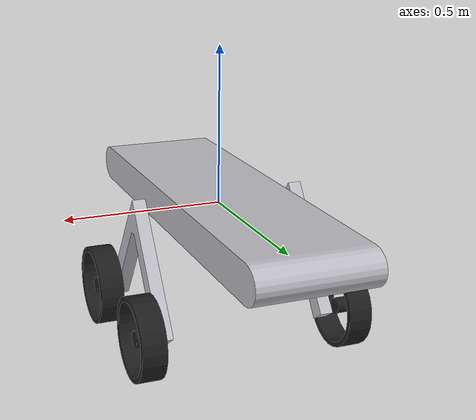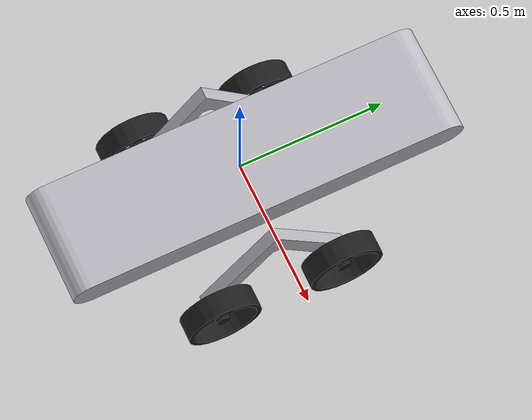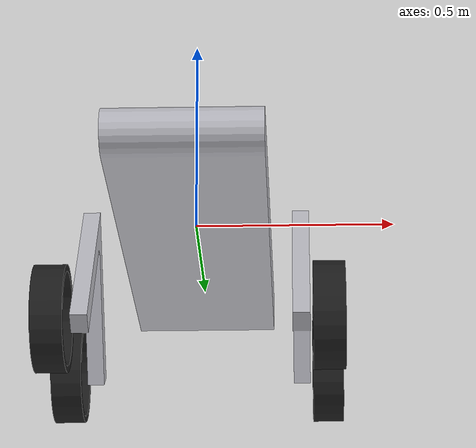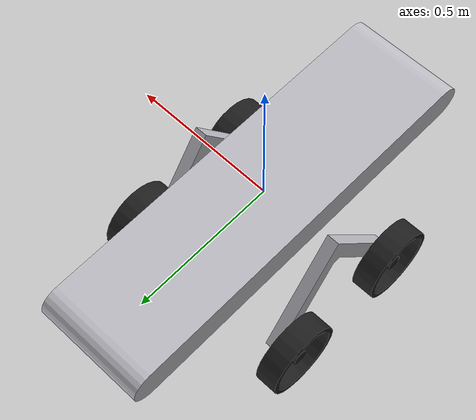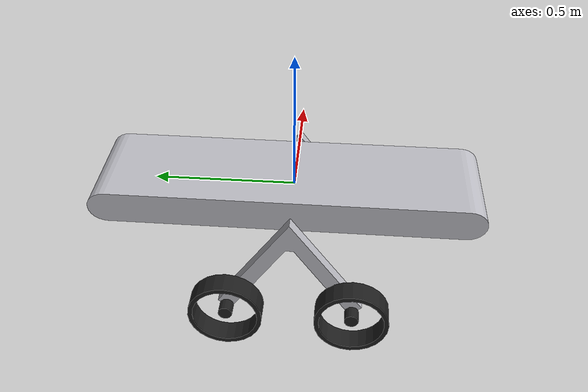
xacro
<?xml version="1.0" ?>
<robot name="digbot" xmlns:xacro="http://www.ros.org/wiki/xacro">

<xacro:include filename="$(find lunabotics2025_urdf)/urdf/materials.xacro" />
<!--xacro:include filename="$(find lunabotics2025_urdf)/urdf/lunabotics_urdf.trans" /-->
<xacro:include filename="$(find lunabotics2025_urdf)/urdf/lunabotics_urdf.gazebo" />

<link name="base_link">
  <inertial>
    <origin xyz="-0.25586676353018807 0.000039307641348851954 0.2586743162275578" rpy="0 0 0"/>
    <mass value="145.15"/>
    <inertia ixx="4.84425197236" iyy="4.557425293" izz="5.02371818712" iyz="0.0" ixy="0.0" ixz="-0.02161067673"/>
  </inertial>
  <visual>
    <origin xyz="0 0 0" rpy="0 0 0"/>
    <geometry>
      <mesh filename="file://$(find lunabotics2025_urdf)/meshes/Diff.stl" scale="0.001 0.001 0.001"/>
    </geometry>
    <material name="dk_green"/>
  </visual>
  <collision>
    <origin xyz="0 0 0" rpy="0 0 0"/>
    <geometry>
      <mesh filename="file://$(find lunabotics2025_urdf)/meshes/Diff.stl" scale="0.001 0.001 0.001"/>
    </geometry>
  </collision>
</link>

<link name="wheel_fl">
  <inertial>
    <origin xyz="-3.730349362740526e-15 0.09077849192803256 -3.83026943495679e-15" rpy="0 0 0"/>
    <mass value="6.80389"/>
    <inertia ixx="0.11749384354" iyy="0.20716716933" izz="0.11749384354" ixy="-0.0" iyz="0.0" ixz="-0.0"/>
  </inertial>
  <visual>
    <origin xyz="0 0 0" rpy="0 0 0"/>
    <geometry>
      <mesh filename="file://$(find lunabotics2025_urdf)/meshes/DigWheel.stl" scale="0.001 0.001 0.001"/>
    </geometry>
    <material name="black"/>
  </visual>
  <collision>
    <origin xyz="0 0 0" rpy="0 0 0"/>
    <geometry>
      <mesh filename="file://$(find lunabotics2025_urdf)/meshes/DigWheel.stl" scale="0.001 0.001 0.001"/>
    </geometry>
  </collision>
</link>

<link name="wheel_fr">
  <inertial>
    <origin xyz="3.9968028886505635e-15 -0.09077849192803216 3.730349362740526e-15" rpy="0 0 0"/>
    <mass value="6.80389"/>
    <inertia ixx="0.11749384354" iyy="0.20716716933" izz="0.11749384354" ixy="-0.0" iyz="0.0" ixz="-0.0"/>
  </inertial>
  <visual>
    <origin xyz="0 0 0" rpy="0 0 0"/>
    <geometry>
      <mesh filename="file://$(find lunabotics2025_urdf)/meshes/DigWheel.stl" scale="0.001 0.001 0.001"/>
    </geometry>
    <material name="black"/>
  </visual>
  <collision>
    <origin xyz="0 0 0" rpy="0 0 0"/>
    <geometry>
      <mesh filename="file://$(find lunabotics2025_urdf)/meshes/DigWheel.stl" scale="0.001 0.001 0.001"/>
    </geometry>
  </collision>
</link>

<link name="wheel_bl">
  <inertial>
    <origin xyz="-3.730349362740526e-15 0.09077849192803207 3.808064974464287e-15" rpy="0 0 0"/>
    <mass value="6.80389"/>
    <inertia ixx="0.11749384354" iyy="0.20716716933" izz="0.11749384354" ixy="-0.0" iyz="0.0" ixz="-0.0"/>
  </inertial>
  <visual>
    <origin xyz="0 0 0" rpy="0 0 0"/>
    <geometry>
      <mesh filename="file://$(find lunabotics2025_urdf)/meshes/DigWheel.stl" scale="0.001 0.001 0.001"/>
    </geometry>
    <material name="black"/>
  </visual>
  <collision>
    <origin xyz="0 0 0" rpy="0 0 0"/>
    <geometry>
      <mesh filename="file://$(find lunabotics2025_urdf)/meshes/DigWheel.stl" scale="0.001 0.001 0.001"/>
    </geometry>
  </collision>
</link>

<link name="wheel_br">
  <inertial>
    <origin xyz="3.9968028886505635e-15 -0.0907784919280322 -3.785860513971784e-15 " rpy="0 0 0"/>
    <mass value="6.80389"/>
    <inertia ixx="0.11749384354" iyy="0.20716716933" izz="0.11749384354" ixy="-0.0" iyz="0.0" ixz="-0.0"/>
  </inertial>
  <visual>
    <origin xyz="0 0 0" rpy="0 0 0"/>
    <geometry>
      <mesh filename="file://$(find lunabotics2025_urdf)/meshes/DigWheel.stl" scale="0.001 0.001 0.001"/>
    </geometry>
    <material name="black"/>
  </visual>
  <collision>
    <origin xyz="0 0 0" rpy="0 0 0"/>
    <geometry>
      <mesh filename="file://$(find lunabotics2025_urdf)/meshes/DigWheel.stl" scale="0.001 0.001 0.001"/>
    </geometry>
  </collision>
</link>

<link name="rocker_r">
  <inertial>
    <origin xyz="-0.4002194744336831 -2.8073985617496778e-16 0.04900225925646633" rpy="0 0 0"/>
    <mass value="145.15"/>
    <inertia ixx="4.8232327848" iyy="4.53348956976" izz="5.0206133078" ixy="-0.0" iyz="-0.0" ixz="0.03733889251"/>
  </inertial>
  <visual>
    <origin xyz="0 0 0" rpy="0 0 0"/>
    <geometry>
      <mesh filename="file://$(find lunabotics2025_urdf)/meshes/Rocker_R.stl" scale="0.001 0.001 0.001"/>
    </geometry>
    <material name="silver"/>
  </visual>
  <collision>
    <origin xyz="0 0 0" rpy="0 0 0"/>
    <geometry>
      <mesh filename="file://$(find lunabotics2025_urdf)/meshes/Rocker_R.stl" scale="0.001 0.001 0.001"/>
    </geometry>
  </collision>
</link>

<link name="rocker_l">
  <inertial>
    <origin xyz="-0.4002194744336831 -2.8073985617496778e-16 0.04900225925646633" rpy="0 0 0"/>
    <mass value="145.15"/>
    <inertia ixx="4.8232327848" iyy="4.53348956976" izz="5.0206133078" ixy="-0.0" iyz="-0.0" ixz="0.03733889251"/>
  </inertial>
  <visual>
    <origin xyz="0 0 0" rpy="0 0 0"/>
    <geometry>
      <mesh filename="file://$(find lunabotics2025_urdf)/meshes/Rocker_L.stl" scale="0.001 0.001 0.001"/>
    </geometry>
    <material name="silver"/>
  </visual>
  <collision>
    <origin xyz="0 0 0" rpy="0 0 0"/>
    <geometry>
      <mesh filename="file://$(find lunabotics2025_urdf)/meshes/Rocker_L.stl" scale="0.001 0.001 0.001"/>
    </geometry>
  </collision>
</link>

<link name="belt_frame">
  <inertial>
    <origin xyz="-0.4002194744336831 -2.8073985617496778e-16 0.04900225925646633" rpy="0 0 0"/>
    <mass value="145.15"/>
    <inertia ixx="4.8232327848" iyy="4.53348956976" izz="5.0206133078" ixy="-0.0" iyz="-0.0" ixz="0.03733889251"/>
  </inertial>
  <visual>
    <origin xyz="0 0 0" rpy="0 0 0"/>
    <geometry>
      <mesh filename="file://$(find lunabotics2025_urdf)/meshes/Belt_Frame.stl" scale="0.001 0.001 0.001"/>
    </geometry>
    <material name="silver"/>
  </visual>
  <collision>
    <origin xyz="0 0 0" rpy="0 0 0"/>
    <geometry>
      <mesh filename="file://$(find lunabotics2025_urdf)/meshes/Belt_Frame.stl" scale="0.001 0.001 0.001"/>
    </geometry>
  </collision>
</link>

<joint name="wheel_fl_to_rocker_l" type="continuous">
  <origin xyz="0.292291 -0.226416 -0.316205" rpy="0 0 0"/>
  <parent link="rocker_l"/>
  <child link="wheel_fl"/>
  <axis xyz="1.0 0.0 0.0"/>
</joint>

<joint name="wheel_bl_to_rocker_l" type="continuous">
  <origin xyz="0.292291 0.211503 -0.319574" rpy="0 0 0"/>
  <parent link="rocker_l"/>
  <child link="wheel_bl"/>
  <axis xyz="1.0 0.0 0.0"/>
</joint>

<joint name="wheel_fr_to_rocker_r" type="continuous">
  <origin xyz="-0.293673 0.214632 -0.316895" rpy="0 0 3.1415926535"/>
  <parent link="rocker_r"/>
  <child link="wheel_fr"/>
  <axis xyz="1.0 0.0 0.0"/>
</joint>

<joint name="wheel_br_to_rocker_r" type="continuous">
  <origin xyz="-0.293682 -0.226364 -0.319574" rpy="0 0 3.1415926535"/>
  <parent link="rocker_r"/>
  <child link="wheel_br"/>
  <axis xyz="1.0 0.0 0.0"/>
</joint>

<joint name="rocker_l_to_base_link" type="revolute">
  <origin xyz="0 0 0" rpy="0 0 0"/>
  <parent link="base_link"/>
  <child link="rocker_l"/>
  <axis xyz="1.0 0.0 0.0"/>
  <limit effort="1000" velocity="2.0" lower="-0.6" upper="0.6" />
</joint>

<joint name="rocker_r_to_base_link" type="revolute">
  <origin xyz="0 0 0" rpy="0 0 0"/>
  <parent link="base_link"/>
  <child link="rocker_r"/>
  <axis xyz="1.0 0.0 0.0"/>
  <limit effort="1000" velocity="2.0" lower="-0.6" upper="0.6" />
</joint>

<joint name="belt_frame_to_base_link" type="revolute">
  <origin xyz="0 0 0" rpy="0 0 0"/>
  <parent link="base_link"/>
  <child link="belt_frame"/>
  <axis xyz="1.0 0.0 0.0"/>
  <limit effort="1000" velocity="2.0" lower="-0.6" upper="0.6" />
</joint>

</robot>

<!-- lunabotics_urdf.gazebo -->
<robot name="Snowplow_URDF" xmlns:xacro="http://www.ros.org/wiki/xacro" >

<xacro:property name="body_color" value="Gazebo/Silver" />

<gazebo>
  <plugin name="control" filename="libgazebo_ros_control.so"/>
</gazebo>
<gazebo reference="base_link">
  <material>${body_color}</material>
  <mu1>0.2</mu1>
  <mu2>0.2</mu2>
  <self_collide>true</self_collide>
  <gravity>true</gravity>
</gazebo>

<gazebo reference="wheel_fl">
  <material>${body_color}</material>
  <mu1>0.2</mu1>
  <mu2>0.2</mu2>
  <self_collide>true</self_collide>
</gazebo>

<gazebo reference="wheel_fr">
  <material>${body_color}</material>
  <mu1>0.2</mu1>
  <mu2>0.2</mu2>
  <self_collide>true</self_collide>
</gazebo>

<gazebo reference="wheel_bl">
  <material>${body_color}</material>
  <mu1>0.2</mu1>
  <mu2>0.2</mu2>
  <self_collide>true</self_collide>
</gazebo>

<gazebo reference="wheel_br">
  <material>${body_color}</material>
  <mu1>0.2</mu1>
  <mu2>0.2</mu2>
  <self_collide>true</self_collide>
</gazebo>

<gazebo reference="rocker_l">
  <material>${body_color}</material>
  <mu1>0.2</mu1>
  <mu2>0.2</mu2>
  <self_collide>true</self_collide>
</gazebo>

<gazebo reference="rocker_r">
  <material>${body_color}</material>
  <mu1>0.2</mu1>
  <mu2>0.2</mu2>
  <self_collide>true</self_collide>
</gazebo>

<gazebo reference="belt_frame">
  <material>${body_color}</material>
  <mu1>0.2</mu1>
  <mu2>0.2</mu2>
  <self_collide>true</self_collide>
</gazebo>

</robot>
